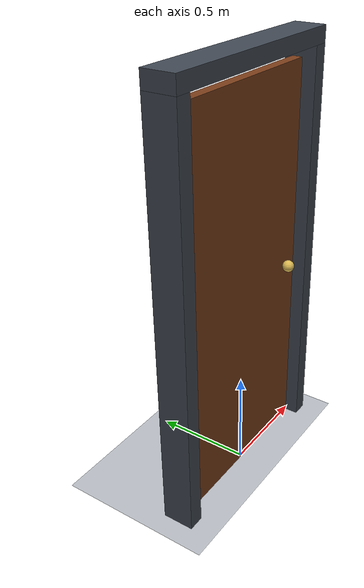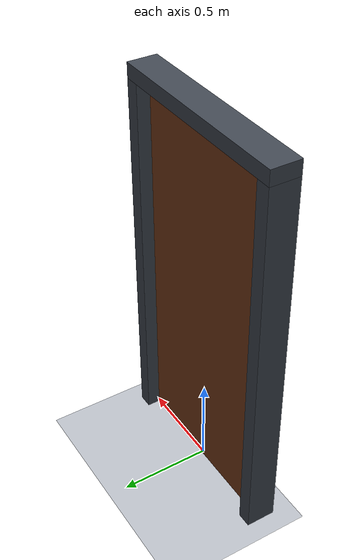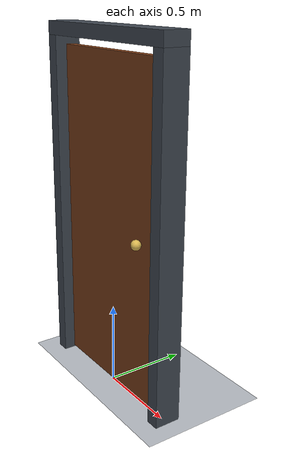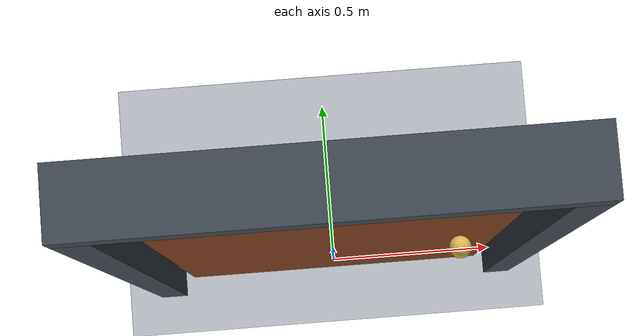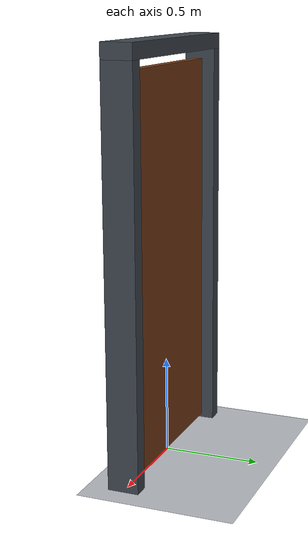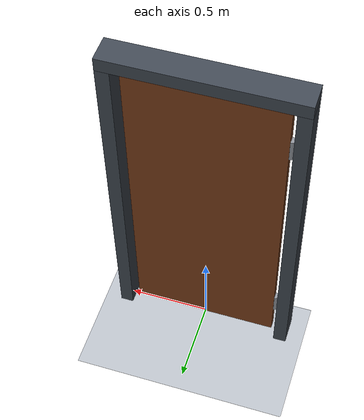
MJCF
<mujoco model="self_closing_door">
  <compiler angle="radian"/>
  <option timestep="0.002" integrator="implicitfast" gravity="0 0 -9.81"/>
  <visual>
    <headlight ambient="0.4 0.4 0.4" diffuse="0.7 0.7 0.7"/>
  </visual>
  <worldbody>
    <light name="overhead" pos="0 -2 4" dir="0 0 -1"/>
    <camera name="overview" pos="3 -4 3" xyaxes="0.8 0.6 0 -0.249 0.332 0.910"/>
    <geom name="floor" type="plane" size="4 4 0.1" pos="0 0 0" rgba="0.72 0.74 0.77 1" friction="0.8 0.01 0.001"/>
    <body name="frame" pos="0 0 0">
      <geom name="frame_left" type="box" pos="-0.52 0 1.04" size="0.04 0.08 1.04" rgba="0.25 0.28 0.32 1"/>
      <geom name="frame_right" type="box" pos="0.52 0 1.04" size="0.04 0.08 1.04" rgba="0.25 0.28 0.32 1"/>
      <geom name="frame_top" type="box" pos="0 0 2.12" size="0.56 0.08 0.04" rgba="0.25 0.28 0.32 1"/>
    </body>
    <body name="door" pos="-0.45 0 1.03">
      <joint name="hinge" type="hinge" pos="0 0 0" axis="0 0 1" limited="true" range="0 1.5" stiffness="45" springref="-0.08" damping="18" armature="0.02" solreflimit="0.004 1" solimplimit="0.99 0.99 0.001"/>
      <geom name="door_panel" type="box" pos="0.45 0 0" size="0.45 0.025 1" mass="12" rgba="0.48 0.24 0.10 1"/>
      <geom name="door_handle" type="sphere" pos="0.78 -0.065 0" size="0.03" mass="0.08" rgba="0.85 0.72 0.32 1"/>
      <geom name="door_hinge_upper" type="cylinder" pos="0 0 0.72" size="0.022 0.065" mass="0.03" rgba="0.55 0.57 0.6 1"/>
      <geom name="door_hinge_lower" type="cylinder" pos="0 0 -0.72" size="0.022 0.065" mass="0.03" rgba="0.55 0.57 0.6 1"/>
    </body>
  </worldbody>
  <keyframe>
    <key name="start" qpos="1.2" qvel="0"/>
  </keyframe>
</mujoco>
